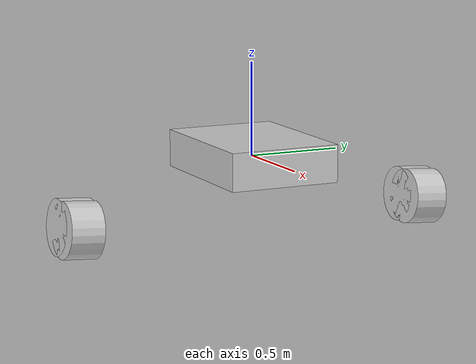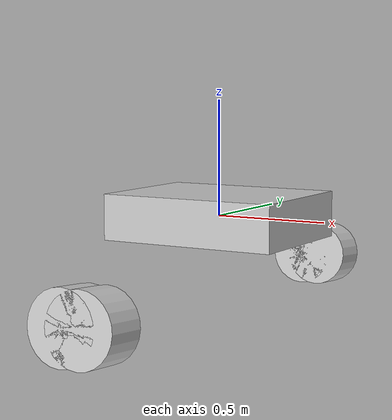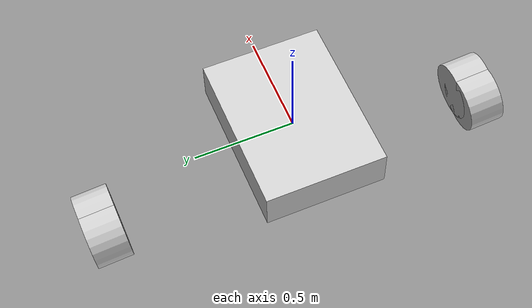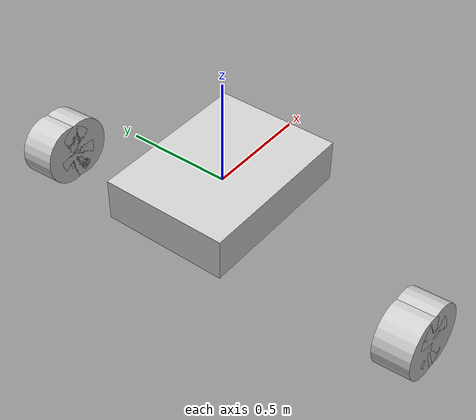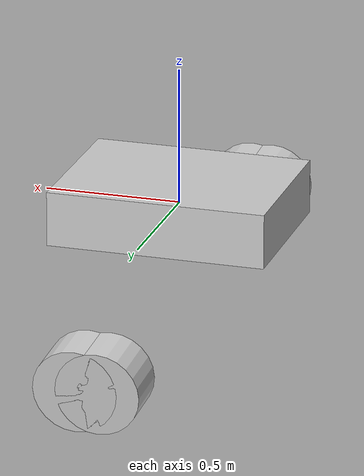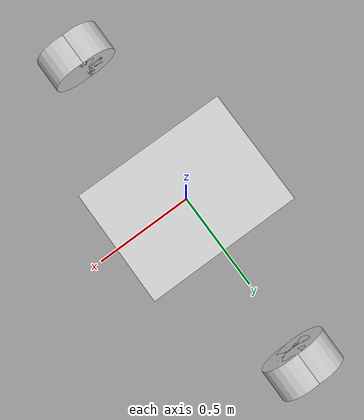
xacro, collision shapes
<?xml version="1.0"?>
<robot name="ares_rover" xmlns:xacro="http://www.ros.org/wiki/xacro">
  <xacro:property name="mesh_package" value="package://ares_rover/meshes/" />

  <!-- Material Definitions -->
  <material name="mat_silver">
    <color rgba="0.8 0.8 0.8 1"/>
  </material>

  <!-- Base Link -->
  <link name="base_link">
    <inertial>
      <mass value="10"/>
      <inertia ixx="0.05" ixy="0" ixz="0" iyy="0.05" iyz="0" izz="0.1"/>
    </inertial>
    <visual>
      <origin xyz="0 0 0.495" rpy="0 0 0"/>
      <geometry>
        <mesh filename="${mesh_package}ares_body.stl" scale="1 1 1"/>
      </geometry>
      <material name="mat_silver"/>
    </visual>
    <collision>
      <origin xyz="0 0 0" rpy="0 0 0"/>
      <geometry>
        <box size="0.8 0.6 0.2"/>
      </geometry>
    </collision>
  </link>

  <!-- Links (Arms) -->
  <!-- Left Link -->
  <link name="left_link">
    <inertial>
      <mass value="1"/>
      <inertia ixx="0.01" ixy="0" ixz="0" iyy="0.01" iyz="0" izz="0.02"/>
    </inertial>
    <visual>
      <origin xyz="0 0.278 0.422" rpy="0 -0 3.15"/>
      <geometry>
        <mesh filename="${mesh_package}ares_link.stl" scale="1 1 1"/>
      </geometry>
    </visual>
    <collision>
      <origin xyz="0 0 0" rpy="0 0 0"/>
      <geometry>
        <box size="0.7 0.1 0.1"/>
      </geometry>
    </collision>
  </link>

  <!-- Right Link -->
  <link name="right_link">
    <inertial>
      <mass value="1"/>
      <inertia ixx="0.01" ixy="0" ixz="0" iyy="0.01" iyz="0" izz="0.02"/>
    </inertial>
    <visual>
      <origin xyz="0 -0.278 0.422" rpy="0 0 0"/>
      <geometry>
        <mesh filename="${mesh_package}ares_link.stl" scale="1 1 1"/>
      </geometry>
    </visual>
    <collision>
      <origin xyz="0 0 0" rpy="0 0 0"/>
      <geometry>
        <box size="0.7 0.1 0.1"/>
      </geometry>
    </collision>
  </link>

  <!-- Joints between base_link and links -->
  <joint name="base_to_left_link" type="fixed">
    <parent link="base_link"/>
    <child link="left_link"/>
    <origin xyz="0 0 0" rpy="0 0 0"/>
  </joint>

  <joint name="base_to_right_link" type="fixed">
    <parent link="base_link"/>
    <child link="right_link"/>
    <origin xyz="0 0 0" rpy="0 0 0"/>
  </joint>

  <!-- Wheel Links -->
  <!-- Front Left Wheel -->
  <link name="front_left_wheel">
    <inertial>
      <mass value="0.5"/>
      <inertia ixx="0.002" ixy="0" ixz="0" iyy="0.002" iyz="0" izz="0.004"/>
    </inertial>
    <visual>
      <origin xyz="0.44 0.35 0.185" rpy="-0 0 -1.58"/>
      <geometry>
        <mesh filename="${mesh_package}ares_wheel.stl" scale="1 1 1"/>
      </geometry>
      <material name="mat_silver"/>
    </visual>
    <collision>
      <origin xyz="0.04 1 -0.3" rpy="1.5 0 0"/>
      <geometry>
        <cylinder radius="0.15" length="0.18"/>
      </geometry>
    </collision>
  </link>

  <!-- Front Right Wheel -->
  <link name="front_right_wheel">
    <inertial>
      <mass value="0.5"/>
      <inertia ixx="0.002" ixy="0" ixz="0" iyy="0.002" iyz="0" izz="0.004"/>
    </inertial>
    <visual>
      <origin xyz="0.44 -0.3667 0.185" rpy="0 -0 1.569"/>
      <geometry>
        <mesh filename="${mesh_package}ares_wheel.stl" scale="1 1 1"/>
      </geometry>
      <material name="mat_silver"/>
    </visual>
    <collision>
      <origin xyz="0.04 -1 -0.3" rpy="1.5 0 0"/>
      <geometry>
        <cylinder radius="0.15" length="0.18"/>
      </geometry>
    </collision>
  </link>

  <!-- Rear Left Wheel -->
  <link name="rear_left_wheel">
    <inertial>
      <mass value="0.5"/>
      <inertia ixx="0.002" ixy="0" ixz="0" iyy="0.002" iyz="0" izz="0.004"/>
    </inertial>
    <visual>
      <origin xyz="-0.43 0.3667 0.185" rpy="0 0 -1.58"/>
      <geometry>
        <mesh filename="${mesh_package}ares_wheel.stl" scale="1 1 1"/>
      </geometry>
      <material name="mat_silver"/>
    </visual>
    <collision>
      <origin xyz="-0.04 1 -0.3" rpy="1.5 0 0"/>
      <geometry>
        <cylinder radius="0.15" length="0.18"/>
      </geometry>
    </collision>
  </link>

  <!-- Rear Right Wheel -->
  <link name="rear_right_wheel">
    <inertial>
      <mass value="0.5"/>
      <inertia ixx="0.002" ixy="0" ixz="0" iyy="0.002" iyz="0" izz="0.004"/>
    </inertial>
    <visual>
      <origin xyz="-0.44 -0.3667 0.185" rpy="0 -0 1.569"/>
      <geometry>
        <mesh filename="${mesh_package}ares_wheel.stl" scale="1 1 1"/>
      </geometry>
      <material name="mat_silver"/>
    </visual>
    <collision>
      <origin xyz="-0.04 -1 -0.3" rpy="1.5 0 0"/>
      <geometry>
        <cylinder radius="0.15" length="0.18"/>
      </geometry>
    </collision>
  </link>

  <!-- Joints between links and wheels -->
  <!-- Each joint origin is set to the endpoint of the link to which the wheel is attached. -->
  <!-- Joint connecting left link to front left wheel -->
  <joint name="left_link_to_front_left_wheel_joint" type="continuous">
    <parent link="left_link"/>
    <child link="front_left_wheel"/>
    <origin xyz="0 0 0" rpy="0 0 0"/>
    <axis xyz="0 0 0"/>
  </joint>

  <!-- Joint connecting left link to rear left wheel -->
  <joint name="left_link_to_rear_left_wheel_joint" type="continuous">
    <parent link="left_link"/>
    <child link="rear_left_wheel"/>
    <origin xyz="0 0 0" rpy="0 0 0"/>
    <axis xyz="0 0 0"/>
  </joint>

  <!-- Joint connecting right link to front right wheel -->
  <joint name="right_link_to_front_right_wheel_joint" type="continuous">
    <parent link="right_link"/>
    <child link="front_right_wheel"/>
    <origin xyz="0 0 0" rpy="0 0 0"/>
    <axis xyz="0 0 0"/>
  </joint>

  <!-- Joint connecting right link to rear right wheel -->
  <joint name="right_link_to_rear_right_wheel_joint" type="continuous">
    <parent link="right_link"/>
    <child link="rear_right_wheel"/>
    <origin xyz="0 0 0" rpy="0 0 0"/>
    <axis xyz="0 0 0"/>
  </joint>

  <!-- Differential Drive Plugin -->
  <gazebo>
    <plugin name="differential_drive_controller" filename="libgazebo_ros_diff_drive.so">
      <rosDebugLevel>Debug</rosDebugLevel>
      <robotNamespace>/ares_rover</robotNamespace>
      <updateRate>100.0</updateRate>
      <leftJoint>left_link_to_front_left_wheel_joint</leftJoint>
      <rightJoint>right_link_to_front_right_wheel_joint</rightJoint>
      <wheelSeparation>0.4</wheelSeparation>
      <wheelDiameter>0.2</wheelDiameter>
      <torque>10</torque>
      <commandTopic>cmd_vel</commandTopic>
      <odometryTopic>odom</odometryTopic>
      <odometryFrame>odom</odometryFrame>
      <robotBaseFrame>base_link</robotBaseFrame>
    </plugin>
  </gazebo>

  <!-- Motor Plugins for Wheels -->
  <!-- Front Left Wheel Motor Plugin -->
  <gazebo>
    <plugin name="front_left_wheel_motor" filename="libgazebo_ros_control.so">
      <joint>left_link_to_front_left_wheel_joint</joint>
      <commandTopic>/ares_rover/front_left_wheel/command</commandTopic>
    </plugin>
  </gazebo>

  <!-- Front Right Wheel Motor Plugin -->
  <gazebo>
    <plugin name="front_right_wheel_motor" filename="libgazebo_ros_control.so">
      <joint>right_link_to_front_right_wheel_joint</joint>
      <commandTopic>/ares_rover/front_right_wheel/command</commandTopic>
    </plugin>
  </gazebo>

  <!-- Rear Left Wheel Motor Plugin -->
  <gazebo>
    <plugin name="rear_left_wheel_motor" filename="libgazebo_ros_control.so">
      <joint>left_link_to_rear_left_wheel_joint</joint>
      <commandTopic>/ares_rover/rear_left_wheel/command</commandTopic>
    </plugin>
  </gazebo>

  <!-- Rear Right Wheel Motor Plugin -->
  <gazebo>
    <plugin name="rear_right_wheel_motor" filename="libgazebo_ros_control.so">
      <joint>right_link_to_rear_right_wheel_joint</joint>
      <commandTopic>/ares_rover/rear_right_wheel/command</commandTopic>
    </plugin>
  </gazebo>

</robot>
